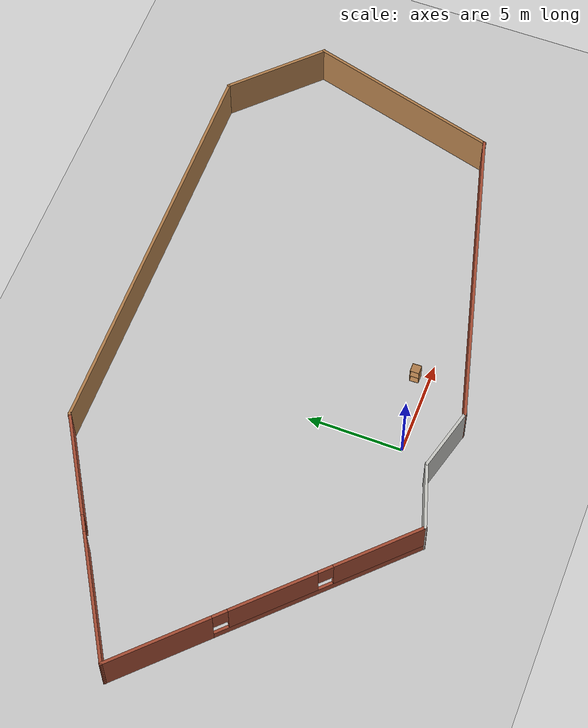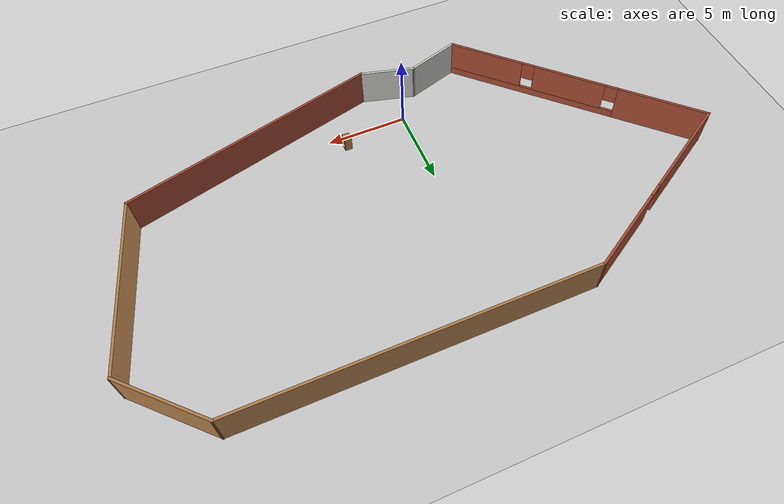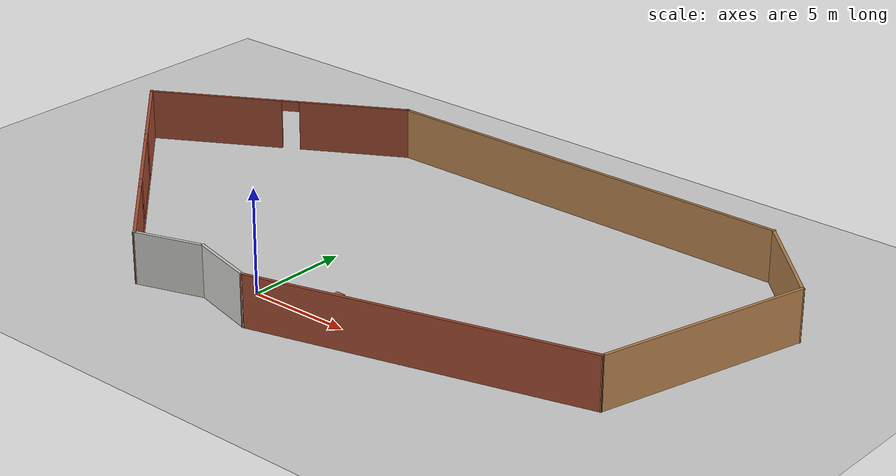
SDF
<sdf version="1.7">
 <world name="default">
  <light name="sun" type="directional">
   <pose>0 0 10 0 -0 0</pose>
   <diffuse>0.8 0.8 0.8 1</diffuse>
   <specular>0.2 0.2 0.2 1</specular>
   <attenuation>
    <range>1000</range>
    <constant>0.9</constant>
    <linear>0.01</linear>
    <quadratic>0.001</quadratic>
   </attenuation>
   <direction>-0.5 0.1 -0.9</direction>
   <spot><inner_angle>0</inner_angle><outer_angle>0</outer_angle><falloff>0</falloff></spot>
  </light>
  <model name="ground_plane">
   <static>1</static>
   <link name="link">
    <collision name="collision">
     <geometry><plane><normal>0 0 1</normal><size>100 100</size></plane></geometry>
     <surface>
      <contact><collide_bitmask>65535</collide_bitmask></contact>
      <friction><ode><mu>100</mu><mu2>50</mu2></ode></friction>
     </surface>
    </collision>
    <visual name="visual">
     <cast_shadows>0</cast_shadows>
     <geometry><plane><normal>0 0 1</normal><size>100 100</size></plane></geometry>
     <material>
      <script><uri>file://media/materials/scripts/gazebo.material</uri><name>Gazebo/Grey</name></script>
     </material>
    </visual>
   </link>
  </model>
  <gravity>0 0 -9.8</gravity>
  <magnetic_field>6e-06 2.3e-05 -4.2e-05</magnetic_field>
  <atmosphere type="adiabatic"/>
  <physics type="ode">
   <max_step_size>0.001</max_step_size>
   <real_time_factor>1</real_time_factor>
   <real_time_update_rate>1000</real_time_update_rate>
  </physics>
  <scene><ambient>0.4 0.4 0.4 1</ambient><background>0.7 0.7 0.7 1</background><shadows>1</shadows></scene>
  <audio><device>default</device></audio>
  <spherical_coordinates>
   <surface_model>EARTH_WGS84</surface_model>
   <latitude_deg>0</latitude_deg>
   <longitude_deg>0</longitude_deg>
   <elevation>0</elevation>
   <heading_deg>0</heading_deg>
  </spherical_coordinates>
  <model name="cabinet">
   <static>1</static>
   <link name="cabinet_bottom_plate">
    <inertial>
     <pose>0 0 -1 0 -0 0</pose>
     <inertia><ixx>2.05</ixx><ixy>0</ixy><ixz>0</ixz><iyy>2.05</iyy><iyz>0</iyz><izz>2.05</izz></inertia>
     <mass>25</mass>
    </inertial>
    <collision name="cabinet_bottom_plate_geom">
     <pose>0 0 0.01 0 -0 0</pose>
     <geometry><box><size>0.45 0.45 0.02</size></box></geometry>
    </collision>
    <visual name="cabinet_bottom_plate_geom_visual">
     <pose>0 0 0.01 0 -0 0</pose>
     <geometry><box><size>0.45 0.45 0.02</size></box></geometry>
     <material>
      <script><uri>file://media/materials/scripts/gazebo.material</uri><name>Gazebo/Wood</name></script>
     </material>
    </visual>
    <collision name="cabinet_bottom_plate_geom_cabinet_back_plate">
     <pose>0.235 0 0.51 0 -0 0</pose>
     <geometry><box><size>0.02 0.45 1.02</size></box></geometry>
    </collision>
    <visual name="cabinet_bottom_plate_geom_cabinet_back_plate_visual">
     <pose>0.235 0 0.51 0 -0 0</pose>
     <geometry><box><size>0.02 0.45 1.02</size></box></geometry>
     <material>
      <script><uri>file://media/materials/scripts/gazebo.material</uri><name>Gazebo/Wood</name></script>
     </material>
    </visual>
    <collision name="cabinet_bottom_plate_geom_cabinet_left_plate">
     <pose>0 0.235 0.51 0 -0 0</pose>
     <geometry><box><size>0.45 0.02 1.02</size></box></geometry>
    </collision>
    <visual name="cabinet_bottom_plate_geom_cabinet_left_plate_visual">
     <pose>0 0.235 0.51 0 -0 0</pose>
     <geometry><box><size>0.45 0.02 1.02</size></box></geometry>
     <material>
      <script><uri>file://media/materials/scripts/gazebo.material</uri><name>Gazebo/Wood</name></script>
     </material>
    </visual>
    <collision name="cabinet_bottom_plate_geom_cabinet_middle_plate">
     <pose>0 0 0.51 0 -0 0</pose>
     <geometry><box><size>0.45 0.45 0.02</size></box></geometry>
    </collision>
    <visual name="cabinet_bottom_plate_geom_cabinet_middle_plate_visual">
     <pose>0 0 0.51 0 -0 0</pose>
     <geometry><box><size>0.45 0.45 0.02</size></box></geometry>
     <material>
      <script><uri>file://media/materials/scripts/gazebo.material</uri><name>Gazebo/Wood</name></script>
     </material>
    </visual>
    <collision name="cabinet_bottom_plate_geom_cabinet_right_plate">
     <pose>0 -0.235 0.51 0 -0 0</pose>
     <geometry><box><size>0.45 0.02 1.02</size></box></geometry>
    </collision>
    <visual name="cabinet_bottom_plate_geom_cabinet_right_plate_visual">
     <pose>0 -0.235 0.51 0 -0 0</pose>
     <geometry><box><size>0.45 0.02 1.02</size></box></geometry>
     <material>
      <script><uri>file://media/materials/scripts/gazebo.material</uri><name>Gazebo/Wood</name></script>
     </material>
    </visual>
    <collision name="cabinet_bottom_plate_geom_cabinet_top_plate">
     <pose>0 0 1.01 0 -0 0</pose>
     <geometry><box><size>0.45 0.45 0.02</size></box></geometry>
    </collision>
    <visual name="cabinet_bottom_plate_geom_cabinet_top_plate_visual">
     <pose>0 0 1.01 0 -0 0</pose>
     <geometry><box><size>0.45 0.45 0.02</size></box></geometry>
     <material>
      <script><uri>file://media/materials/scripts/gazebo.material</uri><name>Gazebo/Wood</name></script>
     </material>
    </visual>
   </link>
   <pose>4.06762 0.734106 0 0 -0 0</pose>
  </model>
  <model name="room.world">
   <pose>1.80367 6.43309 0 0 -0 0</pose>
   <link name="Wall_0">
    <collision name="Wall_0_Collision">
     <geometry><box><size>3.5 0.15 2.5</size></box></geometry>
     <pose>0 0 1.25 0 -0 0</pose>
    </collision>
    <visual name="Wall_0_Visual">
     <pose>0 0 1.25 0 -0 0</pose>
     <geometry><box><size>3.5 0.15 2.5</size></box></geometry>
     <material>
      <script><uri>file://media/materials/scripts/gazebo.material</uri><name>Gazebo/CeilingTiled</name></script>
      <ambient>1 1 1 1</ambient>
     </material>
     <meta><layer>0</layer></meta>
    </visual>
    <pose>-1.64575 -8.54661 0 0 -0 -0.261799</pose>
   </link>
   <link name="Wall_1">
    <collision name="Wall_1_Collision">
     <geometry><box><size>16.25 0.15 2.5</size></box></geometry>
     <pose>0 0 1.25 0 -0 0</pose>
    </collision>
    <visual name="Wall_1_Visual">
     <pose>0 0 1.25 0 -0 0</pose>
     <geometry><box><size>16.25 0.15 2.5</size></box></geometry>
     <material>
      <script><uri>file://media/materials/scripts/gazebo.material</uri><name>Gazebo/Bricks</name></script>
      <ambient>1 1 1 1</ambient>
     </material>
     <meta><layer>0</layer></meta>
    </visual>
    <pose>7.74788 -6.89664 0 0 -0 0.261799</pose>
   </link>
   <link name="Wall_2">
    <collision name="Wall_2_Collision">
     <geometry><box><size>10.5 0.15 2.5</size></box></geometry>
     <pose>0 0 1.25 0 -0 0</pose>
    </collision>
    <visual name="Wall_2_Visual">
     <pose>0 0 1.25 0 -0 0</pose>
     <geometry><box><size>10.5 0.15 2.5</size></box></geometry>
     <material>
      <script><uri>file://media/materials/scripts/gazebo.material</uri><name>Gazebo/Wood</name></script>
      <ambient>1 1 1 1</ambient>
     </material>
     <meta><layer>0</layer></meta>
    </visual>
    <pose>16.863 0.185523 0 0 -0 1.309</pose>
   </link>
   <link name="Wall_3">
    <collision name="Wall_3_Collision">
     <geometry><box><size>5.75 0.15 2.5</size></box></geometry>
     <pose>0 0 1.25 0 -0 0</pose>
    </collision>
    <visual name="Wall_3_Visual">
     <pose>0 0 1.25 0 -0 0</pose>
     <geometry><box><size>5.75 0.15 2.5</size></box></geometry>
     <material>
      <script><uri>file://media/materials/scripts/gazebo.material</uri><name>Gazebo/Wood</name></script>
      <ambient>1 1 1 1</ambient>
     </material>
     <meta><layer>0</layer></meta>
    </visual>
    <pose>16.2225 7.16409 0 0 -0 2.35619</pose>
   </link>
   <link name="Wall_4">
    <collision name="Wall_4_Collision">
     <geometry><box><size>21.25 0.15 2.5</size></box></geometry>
     <pose>0 0 1.25 0 -0 0</pose>
    </collision>
    <visual name="Wall_4_Visual">
     <pose>0 0 1.25 0 -0 0</pose>
     <geometry><box><size>21.25 0.15 2.5</size></box></geometry>
     <material>
      <script><uri>file://media/materials/scripts/gazebo.material</uri><name>Gazebo/Wood</name></script>
      <ambient>1 1 1 1</ambient>
     </material>
     <meta><layer>0</layer></meta>
    </visual>
    <pose>3.69257 9.14399 0 0 -0 3.14159</pose>
   </link>
   <link name="Wall_5">
    <pose>-12.5299 5.86899 0 0 -0 -2.61799</pose>
    <visual name="Wall_5_Visual_0">
     <pose>-3.84434 0 1.25 0 -0 0</pose>
     <geometry><box><size>5.56133 0.15 2.5</size></box></geometry>
     <material>
      <script><uri>file://media/materials/scripts/gazebo.material</uri><name>Gazebo/Bricks</name></script>
      <ambient>1 1 1 1</ambient>
     </material>
     <meta><layer>0</layer></meta>
    </visual>
    <collision name="Wall_5_Collision_0">
     <geometry><box><size>5.56133 0.15 2.5</size></box></geometry>
     <pose>-3.84434 0 1.25 0 -0 0</pose>
    </collision>
    <visual name="Wall_5_Visual_1">
     <pose>3.23066 0 1.25 0 -0 0</pose>
     <geometry><box><size>6.78867 0.15 2.5</size></box></geometry>
     <material>
      <script><uri>file://media/materials/scripts/gazebo.material</uri><name>Gazebo/Bricks</name></script>
      <ambient>1 1 1 1</ambient>
     </material>
     <meta><layer>0</layer></meta>
    </visual>
    <collision name="Wall_5_Collision_1">
     <geometry><box><size>6.78867 0.15 2.5</size></box></geometry>
     <pose>3.23066 0 1.25 0 -0 0</pose>
    </collision>
    <visual name="Wall_5_Visual_2">
     <pose>-0.613674 0 2.25 0 -0 0</pose>
     <geometry><box><size>0.9 0.15 0.5</size></box></geometry>
     <material>
      <script><uri>file://media/materials/scripts/gazebo.material</uri><name>Gazebo/Bricks</name></script>
      <ambient>1 1 1 1</ambient>
     </material>
     <meta><layer>0</layer></meta>
    </visual>
    <collision name="Wall_5_Collision_2">
     <geometry><box><size>0.9 0.15 0.5</size></box></geometry>
     <pose>-0.613674 0 2.25 0 -0 0</pose>
    </collision>
   </link>
   <link name="Wall_6">
    <pose>-12.3334 -3.275 0 0 -0 -0.785398</pose>
    <visual name="Wall_6_Visual_0">
     <pose>-5.56216 0 1.25 0 -0 0</pose>
     <geometry><box><size>5.62569 0.15 2.5</size></box></geometry>
     <material>
      <script><uri>file://media/materials/scripts/gazebo.material</uri><name>Gazebo/Bricks</name></script>
      <ambient>1 1 1 1</ambient>
     </material>
     <meta><layer>0</layer></meta>
    </visual>
    <collision name="Wall_6_Collision_0">
     <geometry><box><size>5.62569 0.15 2.5</size></box></geometry>
     <pose>-5.56216 0 1.25 0 -0 0</pose>
    </collision>
    <visual name="Wall_6_Visual_1">
     <pose>2.81284 0 0.25 0 -0 0</pose>
     <geometry><box><size>11.1243 0.15 0.5</size></box></geometry>
     <material>
      <script><uri>file://media/materials/scripts/gazebo.material</uri><name>Gazebo/Bricks</name></script>
      <ambient>1 1 1 1</ambient>
     </material>
     <meta><layer>0</layer></meta>
    </visual>
    <collision name="Wall_6_Collision_1">
     <geometry><box><size>11.1243 0.15 0.5</size></box></geometry>
     <pose>2.81284 0 0.25 0 -0 0</pose>
    </collision>
    <visual name="Wall_6_Visual_2">
     <pose>0.362077 0 1.5 0 -0 0</pose>
     <geometry><box><size>4.62278 0.15 2</size></box></geometry>
     <material>
      <script><uri>file://media/materials/scripts/gazebo.material</uri><name>Gazebo/Bricks</name></script>
      <ambient>1 1 1 1</ambient>
     </material>
     <meta><layer>0</layer></meta>
    </visual>
    <collision name="Wall_6_Collision_2">
     <geometry><box><size>4.62278 0.15 2</size></box></geometry>
     <pose>0.362077 0 1.5 0 -0 0</pose>
    </collision>
    <visual name="Wall_6_Visual_3">
     <pose>5.92423 0 1.5 0 -0 0</pose>
     <geometry><box><size>4.90153 0.15 2</size></box></geometry>
     <material>
      <script><uri>file://media/materials/scripts/gazebo.material</uri><name>Gazebo/Bricks</name></script>
      <ambient>1 1 1 1</ambient>
     </material>
     <meta><layer>0</layer></meta>
    </visual>
    <collision name="Wall_6_Collision_3">
     <geometry><box><size>4.90153 0.15 2</size></box></geometry>
     <pose>5.92423 0 1.5 0 -0 0</pose>
    </collision>
    <visual name="Wall_6_Visual_4">
     <pose>-2.34931 0 1.9 0 -0 0</pose>
     <geometry><box><size>0.8 0.15 1.2</size></box></geometry>
     <material>
      <script><uri>file://media/materials/scripts/gazebo.material</uri><name>Gazebo/Bricks</name></script>
      <ambient>1 1 1 1</ambient>
     </material>
     <meta><layer>0</layer></meta>
    </visual>
    <collision name="Wall_6_Collision_4">
     <geometry><box><size>0.8 0.15 1.2</size></box></geometry>
     <pose>-2.34931 0 1.9 0 -0 0</pose>
    </collision>
    <visual name="Wall_6_Visual_5">
     <pose>3.07347 0 1.9 0 -0 0</pose>
     <geometry><box><size>0.8 0.15 1.2</size></box></geometry>
     <material>
      <script><uri>file://media/materials/scripts/gazebo.material</uri><name>Gazebo/Bricks</name></script>
      <ambient>1 1 1 1</ambient>
     </material>
     <meta><layer>0</layer></meta>
    </visual>
    <collision name="Wall_6_Collision_5">
     <geometry><box><size>0.8 0.15 1.2</size></box></geometry>
     <pose>3.07347 0 1.9 0 -0 0</pose>
    </collision>
   </link>
   <link name="Wall_7">
    <collision name="Wall_7_Collision">
     <geometry><box><size>3.51265 0.15 2.5</size></box></geometry>
     <pose>0 0 1.25 0 -0 0</pose>
    </collision>
    <visual name="Wall_7_Visual">
     <pose>0 0 1.25 0 -0 0</pose>
     <geometry><box><size>3.51265 0.15 2.5</size></box></geometry>
     <material>
      <script><uri>file://media/materials/scripts/gazebo.material</uri><name>Gazebo/CeilingTiled</name></script>
      <ambient>1 1 1 1</ambient>
     </material>
     <meta><layer>0</layer></meta>
    </visual>
    <pose>-4.86403 -8.62854 0 0 -0 0.311592</pose>
   </link>
   <static>1</static>
  </model>
 </world>
</sdf>
